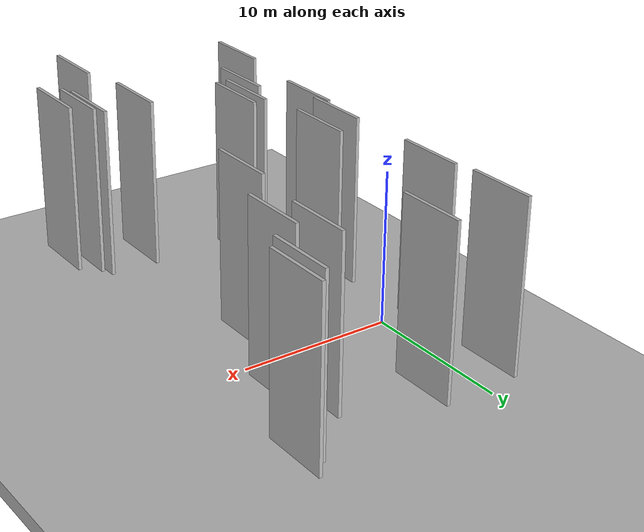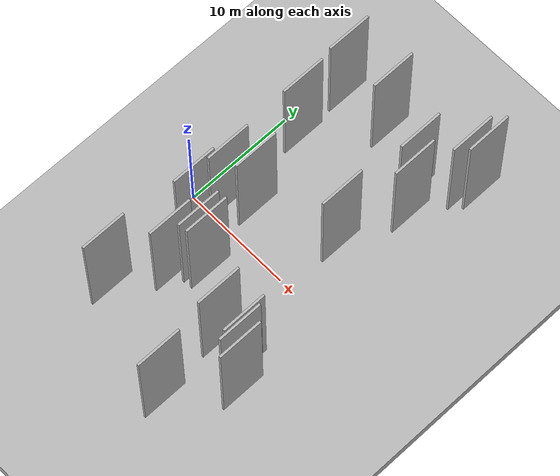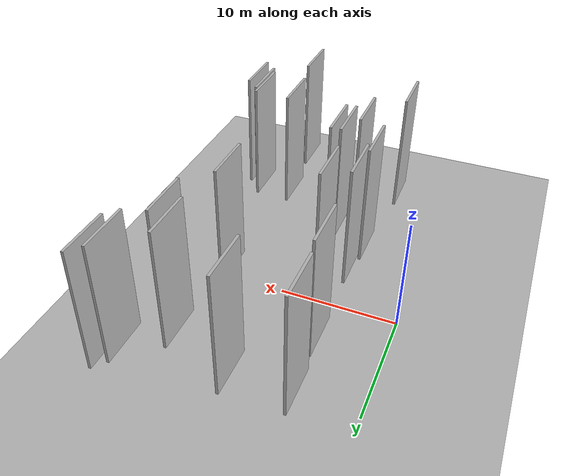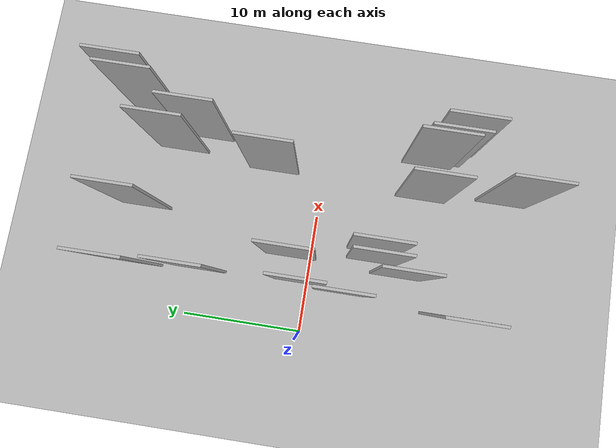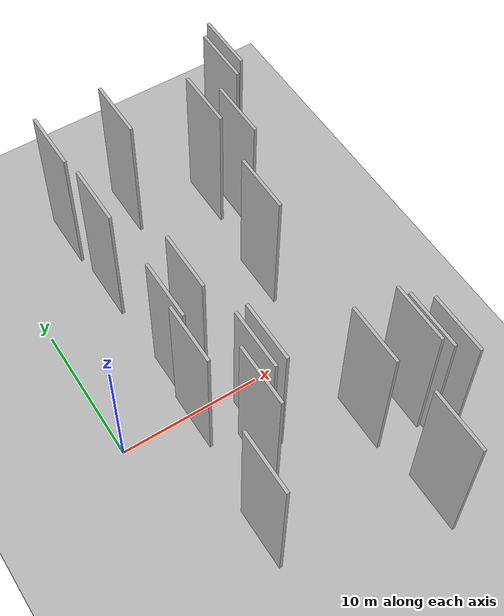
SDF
<?xml version="1.0" encoding="utf-8"?>

<sdf version="1.6">

   <world name="default">

      <gui fullscreen="0">

         <camera name="user_camera">

            <pose>-15 0 4.57585 0 0 0</pose>

            <view_controller>orbit</view_controller>

         </camera>

      </gui>

      <scene>

         <sky>

           <clouds>

             <speed>12</speed>

           </clouds>

         </sky>

         <ambient>0.4 0.4 0.4 1</ambient>

         <background>0.7 0.7 0.7 1</background>

         <shadows>1</shadows>

      </scene>

      <gravity>0 0 -9.8066</gravity>

      <magnetic_field>6e-06 2.3e-05 -4.2e-05</magnetic_field>

      <physics default="0" name="default_physics" type="ode">

         <ode>

            <solver>

               <type>quick</type>

               <iters>10</iters>

               <sor>1.0</sor>

               <use_dynamic_moi_rescaling>0</use_dynamic_moi_rescaling>

            </solver>

            <constraints>

               <cfm>0</cfm>

               <erp>0.2</erp>

               <contact_max_correcting_vel>100</contact_max_correcting_vel>

               <contact_surface_layer>0.001</contact_surface_layer>

            </constraints>

         </ode>

         <max_step_size>0.004</max_step_size>

         <real_time_factor>1</real_time_factor>

         <real_time_update_rate>250</real_time_update_rate>

      </physics>

      <light name="sun" type="directional">

         <cast_shadows>1</cast_shadows>

         <pose>0 0 10 0 0 0</pose>

         <diffuse>0.8 0.8 0.8 1</diffuse>

         <specular>0.2 0.2 0.2 1</specular>

         <attenuation>

            <range>1000</range>

            <constant>0.9</constant>

            <linear>0.01</linear>

            <quadratic>0.001</quadratic>

         </attenuation>

         <direction>-0.5 0.1 -0.9</direction>

      </light>

      <include>

         <name>ground_plane_1</name>

         <uri>model://HANNAS_ground_plane</uri>

         <pose>0 0 0  0 0 0</pose>

      </include>

      <include>

         <name>ground_plane_2</name>

         <uri>model://HANNAS_ground_plane</uri>

         <pose>100 0 0  0 0 0</pose>

      </include>

      <model name="HANNAS_wall_1">

         <static>1</static>

         <pose frame="">4.1126 0.3558 5.0 0.000000 0.000000 1.570796</pose>

         <link name="link">

            <pose frame="">0 0 5.00 0 0 0</pose>

            <collision name="collision">

               <geometry>

                  <box>

                     <size>4.00 0.2 10.00</size>

                  </box>

               </geometry>

               <max_contacts>10</max_contacts>

               <surface>

                  <contact>

                     <ode/>

                  </contact>

                  <bounce/>

                  <friction>

                     <torsional>

                        <ode/>

                     </torsional>

                     <ode/>

                  </friction>

               </surface>

            </collision>

            <visual name="visual">

               <cast_shadows>0</cast_shadows>

               <geometry>

                  <box>

                     <size>4.00 0.2 10.00</size>

                  </box>

               </geometry>

               <material>

                  <script>

                     <uri>model://HANNAS_wall/materials/scripts</uri>

                     <uri>model://HANNAS_wall/materials/textures</uri>

                     <name>vrc/HANNAS_wall</name>

                  </script>

               </material>

            </visual>

            <self_collide>0</self_collide>

            <enable_wind>0</enable_wind>

            <kinematic>0</kinematic>

         </link>

      </model>

      <model name="HANNAS_wall_2">

         <static>1</static>

         <pose frame="">7.3676 -4.8340 5.0 0.000000 0.000000 1.570796</pose>

         <link name="link">

            <pose frame="">0 0 5.00 0 0 0</pose>

            <collision name="collision">

               <geometry>

                  <box>

                     <size>4.00 0.2 10.00</size>

                  </box>

               </geometry>

               <max_contacts>10</max_contacts>

               <surface>

                  <contact>

                     <ode/>

                  </contact>

                  <bounce/>

                  <friction>

                     <torsional>

                        <ode/>

                     </torsional>

                     <ode/>

                  </friction>

               </surface>

            </collision>

            <visual name="visual">

               <cast_shadows>0</cast_shadows>

               <geometry>

                  <box>

                     <size>4.00 0.2 10.00</size>

                  </box>

               </geometry>

               <material>

                  <script>

                     <uri>model://HANNAS_wall/materials/scripts</uri>

                     <uri>model://HANNAS_wall/materials/textures</uri>

                     <name>vrc/HANNAS_wall</name>

                  </script>

               </material>

            </visual>

            <self_collide>0</self_collide>

            <enable_wind>0</enable_wind>

            <kinematic>0</kinematic>

         </link>

      </model>

      <model name="HANNAS_wall_3">

         <static>1</static>

         <pose frame="">16.9383 14.7797 5.0 0.000000 0.000000 1.570796</pose>

         <link name="link">

            <pose frame="">0 0 5.00 0 0 0</pose>

            <collision name="collision">

               <geometry>

                  <box>

                     <size>4.00 0.2 10.00</size>

                  </box>

               </geometry>

               <max_contacts>10</max_contacts>

               <surface>

                  <contact>

                     <ode/>

                  </contact>

                  <bounce/>

                  <friction>

                     <torsional>

                        <ode/>

                     </torsional>

                     <ode/>

                  </friction>

               </surface>

            </collision>

            <visual name="visual">

               <cast_shadows>0</cast_shadows>

               <geometry>

                  <box>

                     <size>4.00 0.2 10.00</size>

                  </box>

               </geometry>

               <material>

                  <script>

                     <uri>model://HANNAS_wall/materials/scripts</uri>

                     <uri>model://HANNAS_wall/materials/textures</uri>

                     <name>vrc/HANNAS_wall</name>

                  </script>

               </material>

            </visual>

            <self_collide>0</self_collide>

            <enable_wind>0</enable_wind>

            <kinematic>0</kinematic>

         </link>

      </model>

      <model name="HANNAS_wall_4">

         <static>1</static>

         <pose frame="">16.2707 -9.8278 5.0 0.000000 0.000000 1.570796</pose>

         <link name="link">

            <pose frame="">0 0 5.00 0 0 0</pose>

            <collision name="collision">

               <geometry>

                  <box>

                     <size>4.00 0.2 10.00</size>

                  </box>

               </geometry>

               <max_contacts>10</max_contacts>

               <surface>

                  <contact>

                     <ode/>

                  </contact>

                  <bounce/>

                  <friction>

                     <torsional>

                        <ode/>

                     </torsional>

                     <ode/>

                  </friction>

               </surface>

            </collision>

            <visual name="visual">

               <cast_shadows>0</cast_shadows>

               <geometry>

                  <box>

                     <size>4.00 0.2 10.00</size>

                  </box>

               </geometry>

               <material>

                  <script>

                     <uri>model://HANNAS_wall/materials/scripts</uri>

                     <uri>model://HANNAS_wall/materials/textures</uri>

                     <name>vrc/HANNAS_wall</name>

                  </script>

               </material>

            </visual>

            <self_collide>0</self_collide>

            <enable_wind>0</enable_wind>

            <kinematic>0</kinematic>

         </link>

      </model>

      <model name="HANNAS_wall_5">

         <static>1</static>

         <pose frame="">3.6789 13.2735 5.0 0.000000 0.000000 1.570796</pose>

         <link name="link">

            <pose frame="">0 0 5.00 0 0 0</pose>

            <collision name="collision">

               <geometry>

                  <box>

                     <size>4.00 0.2 10.00</size>

                  </box>

               </geometry>

               <max_contacts>10</max_contacts>

               <surface>

                  <contact>

                     <ode/>

                  </contact>

                  <bounce/>

                  <friction>

                     <torsional>

                        <ode/>

                     </torsional>

                     <ode/>

                  </friction>

               </surface>

            </collision>

            <visual name="visual">

               <cast_shadows>0</cast_shadows>

               <geometry>

                  <box>

                     <size>4.00 0.2 10.00</size>

                  </box>

               </geometry>

               <material>

                  <script>

                     <uri>model://HANNAS_wall/materials/scripts</uri>

                     <uri>model://HANNAS_wall/materials/textures</uri>

                     <name>vrc/HANNAS_wall</name>

                  </script>

               </material>

            </visual>

            <self_collide>0</self_collide>

            <enable_wind>0</enable_wind>

            <kinematic>0</kinematic>

         </link>

      </model>

      <model name="HANNAS_wall_6">

         <static>1</static>

         <pose frame="">12.6422 3.8409 5.0 0.000000 0.000000 1.570796</pose>

         <link name="link">

            <pose frame="">0 0 5.00 0 0 0</pose>

            <collision name="collision">

               <geometry>

                  <box>

                     <size>4.00 0.2 10.00</size>

                  </box>

               </geometry>

               <max_contacts>10</max_contacts>

               <surface>

                  <contact>

                     <ode/>

                  </contact>

                  <bounce/>

                  <friction>

                     <torsional>

                        <ode/>

                     </torsional>

                     <ode/>

                  </friction>

               </surface>

            </collision>

            <visual name="visual">

               <cast_shadows>0</cast_shadows>

               <geometry>

                  <box>

                     <size>4.00 0.2 10.00</size>

                  </box>

               </geometry>

               <material>

                  <script>

                     <uri>model://HANNAS_wall/materials/scripts</uri>

                     <uri>model://HANNAS_wall/materials/textures</uri>

                     <name>vrc/HANNAS_wall</name>

                  </script>

               </material>

            </visual>

            <self_collide>0</self_collide>

            <enable_wind>0</enable_wind>

            <kinematic>0</kinematic>

         </link>

      </model>

      <model name="HANNAS_wall_7">

         <static>1</static>

         <pose frame="">6.0064 1.4068 5.0 0.000000 0.000000 1.570796</pose>

         <link name="link">

            <pose frame="">0 0 5.00 0 0 0</pose>

            <collision name="collision">

               <geometry>

                  <box>

                     <size>4.00 0.2 10.00</size>

                  </box>

               </geometry>

               <max_contacts>10</max_contacts>

               <surface>

                  <contact>

                     <ode/>

                  </contact>

                  <bounce/>

                  <friction>

                     <torsional>

                        <ode/>

                     </torsional>

                     <ode/>

                  </friction>

               </surface>

            </collision>

            <visual name="visual">

               <cast_shadows>0</cast_shadows>

               <geometry>

                  <box>

                     <size>4.00 0.2 10.00</size>

                  </box>

               </geometry>

               <material>

                  <script>

                     <uri>model://HANNAS_wall/materials/scripts</uri>

                     <uri>model://HANNAS_wall/materials/textures</uri>

                     <name>vrc/HANNAS_wall</name>

                  </script>

               </material>

            </visual>

            <self_collide>0</self_collide>

            <enable_wind>0</enable_wind>

            <kinematic>0</kinematic>

         </link>

      </model>

      <model name="HANNAS_wall_8">

         <static>1</static>

         <pose frame="">3.7806 -2.7580 5.0 0.000000 0.000000 1.570796</pose>

         <link name="link">

            <pose frame="">0 0 5.00 0 0 0</pose>

            <collision name="collision">

               <geometry>

                  <box>

                     <size>4.00 0.2 10.00</size>

                  </box>

               </geometry>

               <max_contacts>10</max_contacts>

               <surface>

                  <contact>

                     <ode/>

                  </contact>

                  <bounce/>

                  <friction>

                     <torsional>

                        <ode/>

                     </torsional>

                     <ode/>

                  </friction>

               </surface>

            </collision>

            <visual name="visual">

               <cast_shadows>0</cast_shadows>

               <geometry>

                  <box>

                     <size>4.00 0.2 10.00</size>

                  </box>

               </geometry>

               <material>

                  <script>

                     <uri>model://HANNAS_wall/materials/scripts</uri>

                     <uri>model://HANNAS_wall/materials/textures</uri>

                     <name>vrc/HANNAS_wall</name>

                  </script>

               </material>

            </visual>

            <self_collide>0</self_collide>

            <enable_wind>0</enable_wind>

            <kinematic>0</kinematic>

         </link>

      </model>

      <model name="HANNAS_wall_9">

         <static>1</static>

         <pose frame="">5.6703 -6.8890 5.0 0.000000 0.000000 1.570796</pose>

         <link name="link">

            <pose frame="">0 0 5.00 0 0 0</pose>

            <collision name="collision">

               <geometry>

                  <box>

                     <size>4.00 0.2 10.00</size>

                  </box>

               </geometry>

               <max_contacts>10</max_contacts>

               <surface>

                  <contact>

                     <ode/>

                  </contact>

                  <bounce/>

                  <friction>

                     <torsional>

                        <ode/>

                     </torsional>

                     <ode/>

                  </friction>

               </surface>

            </collision>

            <visual name="visual">

               <cast_shadows>0</cast_shadows>

               <geometry>

                  <box>

                     <size>4.00 0.2 10.00</size>

                  </box>

               </geometry>

               <material>

                  <script>

                     <uri>model://HANNAS_wall/materials/scripts</uri>

                     <uri>model://HANNAS_wall/materials/textures</uri>

                     <name>vrc/HANNAS_wall</name>

                  </script>

               </material>

            </visual>

            <self_collide>0</self_collide>

            <enable_wind>0</enable_wind>

            <kinematic>0</kinematic>

         </link>

      </model>

      <model name="HANNAS_wall_10">

         <static>1</static>

         <pose frame="">16.1272 13.8947 5.0 0.000000 0.000000 1.570796</pose>

         <link name="link">

            <pose frame="">0 0 5.00 0 0 0</pose>

            <collision name="collision">

               <geometry>

                  <box>

                     <size>4.00 0.2 10.00</size>

                  </box>

               </geometry>

               <max_contacts>10</max_contacts>

               <surface>

                  <contact>

                     <ode/>

                  </contact>

                  <bounce/>

                  <friction>

                     <torsional>

                        <ode/>

                     </torsional>

                     <ode/>

                  </friction>

               </surface>

            </collision>

            <visual name="visual">

               <cast_shadows>0</cast_shadows>

               <geometry>

                  <box>

                     <size>4.00 0.2 10.00</size>

                  </box>

               </geometry>

               <material>

                  <script>

                     <uri>model://HANNAS_wall/materials/scripts</uri>

                     <uri>model://HANNAS_wall/materials/textures</uri>

                     <name>vrc/HANNAS_wall</name>

                  </script>

               </material>

            </visual>

            <self_collide>0</self_collide>

            <enable_wind>0</enable_wind>

            <kinematic>0</kinematic>

         </link>

      </model>

      <model name="HANNAS_wall_11">

         <static>1</static>

         <pose frame="">6.5978 -4.9118 5.0 0.000000 0.000000 1.570796</pose>

         <link name="link">

            <pose frame="">0 0 5.00 0 0 0</pose>

            <collision name="collision">

               <geometry>

                  <box>

                     <size>4.00 0.2 10.00</size>

                  </box>

               </geometry>

               <max_contacts>10</max_contacts>

               <surface>

                  <contact>

                     <ode/>

                  </contact>

                  <bounce/>

                  <friction>

                     <torsional>

                        <ode/>

                     </torsional>

                     <ode/>

                  </friction>

               </surface>

            </collision>

            <visual name="visual">

               <cast_shadows>0</cast_shadows>

               <geometry>

                  <box>

                     <size>4.00 0.2 10.00</size>

                  </box>

               </geometry>

               <material>

                  <script>

                     <uri>model://HANNAS_wall/materials/scripts</uri>

                     <uri>model://HANNAS_wall/materials/textures</uri>

                     <name>vrc/HANNAS_wall</name>

                  </script>

               </material>

            </visual>

            <self_collide>0</self_collide>

            <enable_wind>0</enable_wind>

            <kinematic>0</kinematic>

         </link>

      </model>

      <model name="HANNAS_wall_12">

         <static>1</static>

         <pose frame="">13.2692 11.2890 5.0 0.000000 0.000000 1.570796</pose>

         <link name="link">

            <pose frame="">0 0 5.00 0 0 0</pose>

            <collision name="collision">

               <geometry>

                  <box>

                     <size>4.00 0.2 10.00</size>

                  </box>

               </geometry>

               <max_contacts>10</max_contacts>

               <surface>

                  <contact>

                     <ode/>

                  </contact>

                  <bounce/>

                  <friction>

                     <torsional>

                        <ode/>

                     </torsional>

                     <ode/>

                  </friction>

               </surface>

            </collision>

            <visual name="visual">

               <cast_shadows>0</cast_shadows>

               <geometry>

                  <box>

                     <size>4.00 0.2 10.00</size>

                  </box>

               </geometry>

               <material>

                  <script>

                     <uri>model://HANNAS_wall/materials/scripts</uri>

                     <uri>model://HANNAS_wall/materials/textures</uri>

                     <name>vrc/HANNAS_wall</name>

                  </script>

               </material>

            </visual>

            <self_collide>0</self_collide>

            <enable_wind>0</enable_wind>

            <kinematic>0</kinematic>

         </link>

      </model>

      <model name="HANNAS_wall_13">

         <static>1</static>

         <pose frame="">3.1629 -11.1318 5.0 0.000000 0.000000 1.570796</pose>

         <link name="link">

            <pose frame="">0 0 5.00 0 0 0</pose>

            <collision name="collision">

               <geometry>

                  <box>

                     <size>4.00 0.2 10.00</size>

                  </box>

               </geometry>

               <max_contacts>10</max_contacts>

               <surface>

                  <contact>

                     <ode/>

                  </contact>

                  <bounce/>

                  <friction>

                     <torsional>

                        <ode/>

                     </torsional>

                     <ode/>

                  </friction>

               </surface>

            </collision>

            <visual name="visual">

               <cast_shadows>0</cast_shadows>

               <geometry>

                  <box>

                     <size>4.00 0.2 10.00</size>

                  </box>

               </geometry>

               <material>

                  <script>

                     <uri>model://HANNAS_wall/materials/scripts</uri>

                     <uri>model://HANNAS_wall/materials/textures</uri>

                     <name>vrc/HANNAS_wall</name>

                  </script>

               </material>

            </visual>

            <self_collide>0</self_collide>

            <enable_wind>0</enable_wind>

            <kinematic>0</kinematic>

         </link>

      </model>

      <model name="HANNAS_wall_14">

         <static>1</static>

         <pose frame="">3.9390 8.2262 5.0 0.000000 0.000000 1.570796</pose>

         <link name="link">

            <pose frame="">0 0 5.00 0 0 0</pose>

            <collision name="collision">

               <geometry>

                  <box>

                     <size>4.00 0.2 10.00</size>

                  </box>

               </geometry>

               <max_contacts>10</max_contacts>

               <surface>

                  <contact>

                     <ode/>

                  </contact>

                  <bounce/>

                  <friction>

                     <torsional>

                        <ode/>

                     </torsional>

                     <ode/>

                  </friction>

               </surface>

            </collision>

            <visual name="visual">

               <cast_shadows>0</cast_shadows>

               <geometry>

                  <box>

                     <size>4.00 0.2 10.00</size>

                  </box>

               </geometry>

               <material>

                  <script>

                     <uri>model://HANNAS_wall/materials/scripts</uri>

                     <uri>model://HANNAS_wall/materials/textures</uri>

                     <name>vrc/HANNAS_wall</name>

                  </script>

               </material>

            </visual>

            <self_collide>0</self_collide>

            <enable_wind>0</enable_wind>

            <kinematic>0</kinematic>

         </link>

      </model>

      <model name="HANNAS_wall_15">

         <static>1</static>

         <pose frame="">15.2631 -8.9007 5.0 0.000000 0.000000 1.570796</pose>

         <link name="link">

            <pose frame="">0 0 5.00 0 0 0</pose>

            <collision name="collision">

               <geometry>

                  <box>

                     <size>4.00 0.2 10.00</size>

                  </box>

               </geometry>

               <max_contacts>10</max_contacts>

               <surface>

                  <contact>

                     <ode/>

                  </contact>

                  <bounce/>

                  <friction>

                     <torsional>

                        <ode/>

                     </torsional>

                     <ode/>

                  </friction>

               </surface>

            </collision>

            <visual name="visual">

               <cast_shadows>0</cast_shadows>

               <geometry>

                  <box>

                     <size>4.00 0.2 10.00</size>

                  </box>

               </geometry>

               <material>

                  <script>

                     <uri>model://HANNAS_wall/materials/scripts</uri>

                     <uri>model://HANNAS_wall/materials/textures</uri>

                     <name>vrc/HANNAS_wall</name>

                  </script>

               </material>

            </visual>

            <self_collide>0</self_collide>

            <enable_wind>0</enable_wind>

            <kinematic>0</kinematic>

         </link>

      </model>

      <model name="HANNAS_wall_16">

         <static>1</static>

         <pose frame="">12.6993 -14.4395 5.0 0.000000 0.000000 1.570796</pose>

         <link name="link">

            <pose frame="">0 0 5.00 0 0 0</pose>

            <collision name="collision">

               <geometry>

                  <box>

                     <size>4.00 0.2 10.00</size>

                  </box>

               </geometry>

               <max_contacts>10</max_contacts>

               <surface>

                  <contact>

                     <ode/>

                  </contact>

                  <bounce/>

                  <friction>

                     <torsional>

                        <ode/>

                     </torsional>

                     <ode/>

                  </friction>

               </surface>

            </collision>

            <visual name="visual">

               <cast_shadows>0</cast_shadows>

               <geometry>

                  <box>

                     <size>4.00 0.2 10.00</size>

                  </box>

               </geometry>

               <material>

                  <script>

                     <uri>model://HANNAS_wall/materials/scripts</uri>

                     <uri>model://HANNAS_wall/materials/textures</uri>

                     <name>vrc/HANNAS_wall</name>

                  </script>

               </material>

            </visual>

            <self_collide>0</self_collide>

            <enable_wind>0</enable_wind>

            <kinematic>0</kinematic>

         </link>

      </model>

      <model name="HANNAS_wall_17">

         <static>1</static>

         <pose frame="">8.2468 13.4351 5.0 0.000000 0.000000 1.570796</pose>

         <link name="link">

            <pose frame="">0 0 5.00 0 0 0</pose>

            <collision name="collision">

               <geometry>

                  <box>

                     <size>4.00 0.2 10.00</size>

                  </box>

               </geometry>

               <max_contacts>10</max_contacts>

               <surface>

                  <contact>

                     <ode/>

                  </contact>

                  <bounce/>

                  <friction>

                     <torsional>

                        <ode/>

                     </torsional>

                     <ode/>

                  </friction>

               </surface>

            </collision>

            <visual name="visual">

               <cast_shadows>0</cast_shadows>

               <geometry>

                  <box>

                     <size>4.00 0.2 10.00</size>

                  </box>

               </geometry>

               <material>

                  <script>

                     <uri>model://HANNAS_wall/materials/scripts</uri>

                     <uri>model://HANNAS_wall/materials/textures</uri>

                     <name>vrc/HANNAS_wall</name>

                  </script>

               </material>

            </visual>

            <self_collide>0</self_collide>

            <enable_wind>0</enable_wind>

            <kinematic>0</kinematic>

         </link>

      </model>

      <model name="HANNAS_wall_18">

         <static>1</static>

         <pose frame="">14.9471 -8.2165 5.0 0.000000 0.000000 1.570796</pose>

         <link name="link">

            <pose frame="">0 0 5.00 0 0 0</pose>

            <collision name="collision">

               <geometry>

                  <box>

                     <size>4.00 0.2 10.00</size>

                  </box>

               </geometry>

               <max_contacts>10</max_contacts>

               <surface>

                  <contact>

                     <ode/>

                  </contact>

                  <bounce/>

                  <friction>

                     <torsional>

                        <ode/>

                     </torsional>

                     <ode/>

                  </friction>

               </surface>

            </collision>

            <visual name="visual">

               <cast_shadows>0</cast_shadows>

               <geometry>

                  <box>

                     <size>4.00 0.2 10.00</size>

                  </box>

               </geometry>

               <material>

                  <script>

                     <uri>model://HANNAS_wall/materials/scripts</uri>

                     <uri>model://HANNAS_wall/materials/textures</uri>

                     <name>vrc/HANNAS_wall</name>

                  </script>

               </material>

            </visual>

            <self_collide>0</self_collide>

            <enable_wind>0</enable_wind>

            <kinematic>0</kinematic>

         </link>

      </model>

      <model name="HANNAS_wall_19">

         <static>1</static>

         <pose frame="">12.1136 -8.0549 5.0 0.000000 0.000000 1.570796</pose>

         <link name="link">

            <pose frame="">0 0 5.00 0 0 0</pose>

            <collision name="collision">

               <geometry>

                  <box>

                     <size>4.00 0.2 10.00</size>

                  </box>

               </geometry>

               <max_contacts>10</max_contacts>

               <surface>

                  <contact>

                     <ode/>

                  </contact>

                  <bounce/>

                  <friction>

                     <torsional>

                        <ode/>

                     </torsional>

                     <ode/>

                  </friction>

               </surface>

            </collision>

            <visual name="visual">

               <cast_shadows>0</cast_shadows>

               <geometry>

                  <box>

                     <size>4.00 0.2 10.00</size>

                  </box>

               </geometry>

               <material>

                  <script>

                     <uri>model://HANNAS_wall/materials/scripts</uri>

                     <uri>model://HANNAS_wall/materials/textures</uri>

                     <name>vrc/HANNAS_wall</name>

                  </script>

               </material>

            </visual>

            <self_collide>0</self_collide>

            <enable_wind>0</enable_wind>

            <kinematic>0</kinematic>

         </link>

      </model>

      <model name="HANNAS_wall_20">

         <static>1</static>

         <pose frame="">14.5503 9.4474 5.0 0.000000 0.000000 1.570796</pose>

         <link name="link">

            <pose frame="">0 0 5.00 0 0 0</pose>

            <collision name="collision">

               <geometry>

                  <box>

                     <size>4.00 0.2 10.00</size>

                  </box>

               </geometry>

               <max_contacts>10</max_contacts>

               <surface>

                  <contact>

                     <ode/>

                  </contact>

                  <bounce/>

                  <friction>

                     <torsional>

                        <ode/>

                     </torsional>

                     <ode/>

                  </friction>

               </surface>

            </collision>

            <visual name="visual">

               <cast_shadows>0</cast_shadows>

               <geometry>

                  <box>

                     <size>4.00 0.2 10.00</size>

                  </box>

               </geometry>

               <material>

                  <script>

                     <uri>model://HANNAS_wall/materials/scripts</uri>

                     <uri>model://HANNAS_wall/materials/textures</uri>

                     <name>vrc/HANNAS_wall</name>

                  </script>

               </material>

            </visual>

            <self_collide>0</self_collide>

            <enable_wind>0</enable_wind>

            <kinematic>0</kinematic>

         </link>

      </model>

   </world>

</sdf>

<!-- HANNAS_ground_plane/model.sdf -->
<sdf version="1.4">
<model name="HANNAS_ground_plane">
  <static>true</static>
    <link name="link">
      <collision name="collision">
        <geometry>
          <plane>
            <normal>0 0 1</normal>
            <size>1000 1000</size>
          </plane>
        </geometry>
        <surface>
          <friction>
            <ode>
              <mu>100</mu>
              <mu2>50</mu2>
            </ode>
          </friction>
        </surface>
      </collision>
      <visual name="visual">
        <cast_shadows>false</cast_shadows>
        <geometry>
          <plane>
            <normal>0 0 1</normal>
            <size>1000 1000</size>
          </plane>
        </geometry>
        <material>
          <script>
            <uri>model://HANNAS_ground_plane/materials/scripts/HANNAS_ground_plane.material</uri>
	    <uri>model://HANNAS_ground_plane/materials/textures</uri>
            <name>HANNASGroundPlane/Image</name>
          </script>
        </material>
      </visual>
    </link>
  </model>
</sdf>
